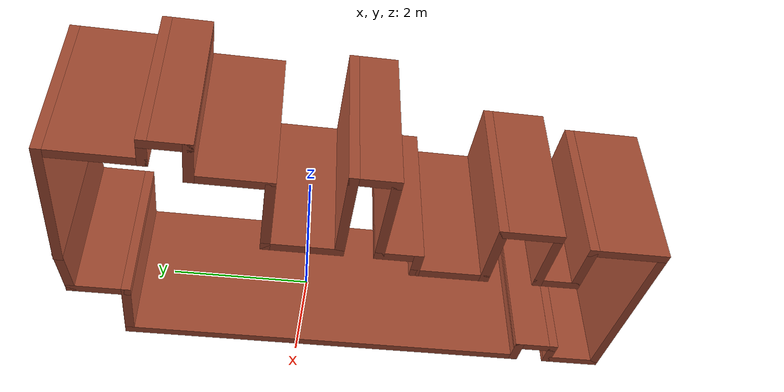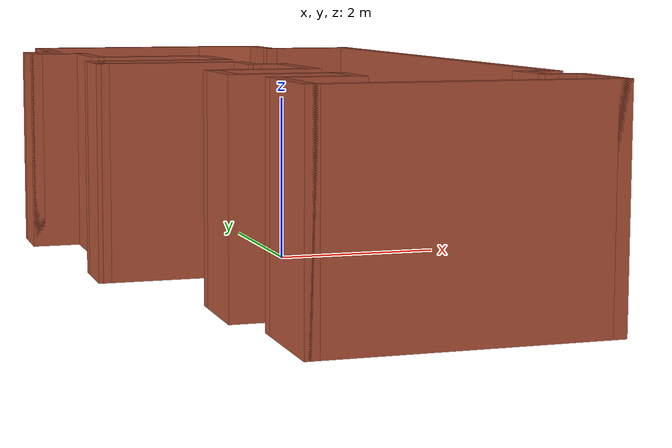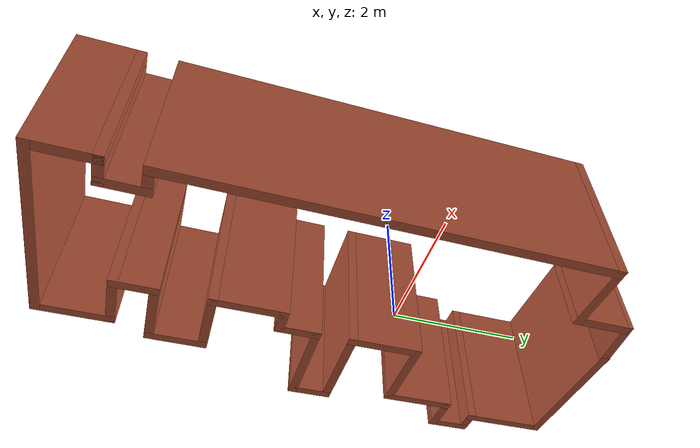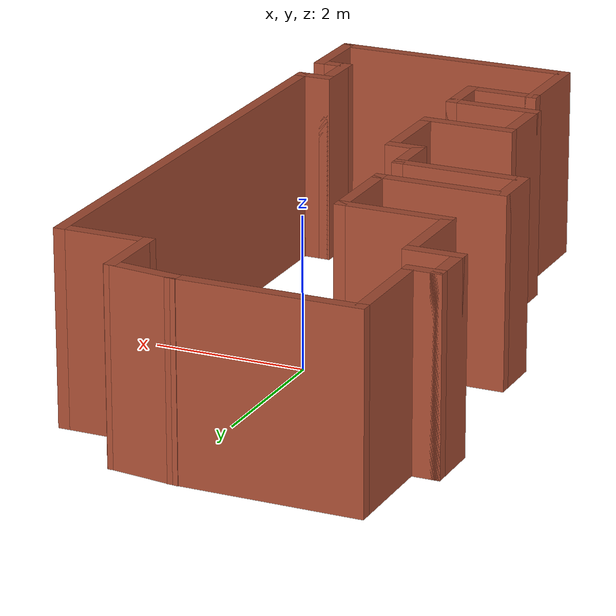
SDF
<?xml version='1.0'?>
<sdf version='1.6'>
  <model name='map_68'>
    <pose frame=''>-0.504262 -0.757579 0 0 -0 0</pose>
    <link name='Wall_10'>
      <collision name='Wall_10_Collision'>
        <geometry>
          <box>
            <size>1.5 0.15 2.5</size>
          </box>
        </geometry>
        <pose frame=''>0 0 1.25 0 -0 0</pose>
      </collision>
      <visual name='Wall_10_Visual'>
        <pose frame=''>0 0 1.25 0 -0 0</pose>
        <geometry>
          <box>
            <size>1.5 0.15 2.5</size>
          </box>
        </geometry>
        <material>
          <script>
            <uri>file://media/materials/scripts/gazebo.material</uri>
            <name>Gazebo/Bricks</name>
          </script>
          <ambient>1 1 1 1</ambient>
        </material>
        <meta>
          <layer>0</layer>
        </meta>
      </visual>
      <pose frame=''>-1 1.44569 0 0 -0 0</pose>
    </link>
    <link name='Wall_11'>
      <collision name='Wall_11_Collision'>
        <geometry>
          <box>
            <size>1.25 0.15 2.5</size>
          </box>
        </geometry>
        <pose frame=''>0 0 1.25 0 -0 0</pose>
      </collision>
      <visual name='Wall_11_Visual'>
        <pose frame=''>0 0 1.25 0 -0 0</pose>
        <geometry>
          <box>
            <size>1.25 0.15 2.5</size>
          </box>
        </geometry>
        <material>
          <script>
            <uri>file://media/materials/scripts/gazebo.material</uri>
            <name>Gazebo/Bricks</name>
          </script>
          <ambient>1 1 1 1</ambient>
        </material>
        <meta>
          <layer>0</layer>
        </meta>
      </visual>
      <pose frame=''>-0.325 0.895693 0 0 -0 -1.5708</pose>
    </link>
    <link name='Wall_12'>
      <collision name='Wall_12_Collision'>
        <geometry>
          <box>
            <size>1.75 0.15 2.5</size>
          </box>
        </geometry>
        <pose frame=''>0 0 1.25 0 -0 0</pose>
      </collision>
      <visual name='Wall_12_Visual'>
        <pose frame=''>0 0 1.25 0 -0 0</pose>
        <geometry>
          <box>
            <size>1.75 0.15 2.5</size>
          </box>
        </geometry>
        <material>
          <script>
            <uri>file://media/materials/scripts/gazebo.material</uri>
            <name>Gazebo/Bricks</name>
          </script>
          <ambient>1 1 1 1</ambient>
        </material>
        <meta>
          <layer>0</layer>
        </meta>
      </visual>
      <pose frame=''>-1.125 0.345693 0 0 -0 3.14159</pose>
    </link>
    <link name='Wall_13'>
      <collision name='Wall_13_Collision'>
        <geometry>
          <box>
            <size>0.75 0.15 2.5</size>
          </box>
        </geometry>
        <pose frame=''>0 0 1.25 0 -0 0</pose>
      </collision>
      <visual name='Wall_13_Visual'>
        <pose frame=''>0 0 1.25 0 -0 0</pose>
        <geometry>
          <box>
            <size>0.75 0.15 2.5</size>
          </box>
        </geometry>
        <material>
          <script>
            <uri>file://media/materials/scripts/gazebo.material</uri>
            <name>Gazebo/Bricks</name>
          </script>
          <ambient>1 1 1 1</ambient>
        </material>
        <meta>
          <layer>0</layer>
        </meta>
      </visual>
      <pose frame=''>-1.925 0.045693 0 0 -0 -1.5708</pose>
    </link>
    <link name='Wall_14'>
      <collision name='Wall_14_Collision'>
        <geometry>
          <box>
            <size>1.75 0.15 2.5</size>
          </box>
        </geometry>
        <pose frame=''>0 0 1.25 0 -0 0</pose>
      </collision>
      <visual name='Wall_14_Visual'>
        <pose frame=''>0 0 1.25 0 -0 0</pose>
        <geometry>
          <box>
            <size>1.75 0.15 2.5</size>
          </box>
        </geometry>
        <material>
          <script>
            <uri>file://media/materials/scripts/gazebo.material</uri>
            <name>Gazebo/Bricks</name>
          </script>
          <ambient>1 1 1 1</ambient>
        </material>
        <meta>
          <layer>0</layer>
        </meta>
      </visual>
      <pose frame=''>-1.125 -0.254307 0 0 -0 0</pose>
    </link>
    <link name='Wall_15'>
      <collision name='Wall_15_Collision'>
        <geometry>
          <box>
            <size>0.75 0.15 2.5</size>
          </box>
        </geometry>
        <pose frame=''>0 0 1.25 0 -0 0</pose>
      </collision>
      <visual name='Wall_15_Visual'>
        <pose frame=''>0 0 1.25 0 -0 0</pose>
        <geometry>
          <box>
            <size>0.75 0.15 2.5</size>
          </box>
        </geometry>
        <material>
          <script>
            <uri>file://media/materials/scripts/gazebo.material</uri>
            <name>Gazebo/Bricks</name>
          </script>
          <ambient>1 1 1 1</ambient>
        </material>
        <meta>
          <layer>0</layer>
        </meta>
      </visual>
      <pose frame=''>-0.325 -0.554307 0 0 -0 -1.5708</pose>
    </link>
    <link name='Wall_16'>
      <collision name='Wall_16_Collision'>
        <geometry>
          <box>
            <size>0.5 0.15 2.5</size>
          </box>
        </geometry>
        <pose frame=''>0 0 1.25 0 -0 0</pose>
      </collision>
      <visual name='Wall_16_Visual'>
        <pose frame=''>0 0 1.25 0 -0 0</pose>
        <geometry>
          <box>
            <size>0.5 0.15 2.5</size>
          </box>
        </geometry>
        <material>
          <script>
            <uri>file://media/materials/scripts/gazebo.material</uri>
            <name>Gazebo/Bricks</name>
          </script>
          <ambient>1 1 1 1</ambient>
        </material>
        <meta>
          <layer>0</layer>
        </meta>
      </visual>
      <pose frame=''>-0.15 -0.854307 0 0 -0 0</pose>
    </link>
    <link name='Wall_17'>
      <collision name='Wall_17_Collision'>
        <geometry>
          <box>
            <size>1.25 0.15 2.5</size>
          </box>
        </geometry>
        <pose frame=''>0 0 1.25 0 -0 0</pose>
      </collision>
      <visual name='Wall_17_Visual'>
        <pose frame=''>0 0 1.25 0 -0 0</pose>
        <geometry>
          <box>
            <size>1.25 0.15 2.5</size>
          </box>
        </geometry>
        <material>
          <script>
            <uri>file://media/materials/scripts/gazebo.material</uri>
            <name>Gazebo/Bricks</name>
          </script>
          <ambient>1 1 1 1</ambient>
        </material>
        <meta>
          <layer>0</layer>
        </meta>
      </visual>
      <pose frame=''>0.025 -1.40431 0 0 -0 -1.5708</pose>
    </link>
    <link name='Wall_18'>
      <collision name='Wall_18_Collision'>
        <geometry>
          <box>
            <size>1.25 0.15 2.5</size>
          </box>
        </geometry>
        <pose frame=''>0 0 1.25 0 -0 0</pose>
      </collision>
      <visual name='Wall_18_Visual'>
        <pose frame=''>0 0 1.25 0 -0 0</pose>
        <geometry>
          <box>
            <size>1.25 0.15 2.5</size>
          </box>
        </geometry>
        <material>
          <script>
            <uri>file://media/materials/scripts/gazebo.material</uri>
            <name>Gazebo/Bricks</name>
          </script>
          <ambient>1 1 1 1</ambient>
        </material>
        <meta>
          <layer>0</layer>
        </meta>
      </visual>
      <pose frame=''>-0.525 -1.95431 0 0 -0 3.14159</pose>
    </link>
    <link name='Wall_19'>
      <collision name='Wall_19_Collision'>
        <geometry>
          <box>
            <size>1 0.15 2.5</size>
          </box>
        </geometry>
        <pose frame=''>0 0 1.25 0 -0 0</pose>
      </collision>
      <visual name='Wall_19_Visual'>
        <pose frame=''>0 0 1.25 0 -0 0</pose>
        <geometry>
          <box>
            <size>1 0.15 2.5</size>
          </box>
        </geometry>
        <material>
          <script>
            <uri>file://media/materials/scripts/gazebo.material</uri>
            <name>Gazebo/Bricks</name>
          </script>
          <ambient>1 1 1 1</ambient>
        </material>
        <meta>
          <layer>0</layer>
        </meta>
      </visual>
      <pose frame=''>-1.075 -2.37931 0 0 -0 -1.5708</pose>
    </link>
    <link name='Wall_2'>
      <collision name='Wall_2_Collision'>
        <geometry>
          <box>
            <size>2.43882 0.15 2.5</size>
          </box>
        </geometry>
        <pose frame=''>0 0 1.25 0 -0 0</pose>
      </collision>
      <visual name='Wall_2_Visual'>
        <pose frame=''>0 0 1.25 0 -0 0</pose>
        <geometry>
          <box>
            <size>2.43882 0.15 2.5</size>
          </box>
        </geometry>
        <material>
          <script>
            <uri>file://media/materials/scripts/gazebo.material</uri>
            <name>Gazebo/Bricks</name>
          </script>
          <ambient>1 1 1 1</ambient>
        </material>
        <meta>
          <layer>0</layer>
        </meta>
      </visual>
      <pose frame=''>-0.78059 4.49569 0 0 -0 3.14159</pose>
    </link>
    <link name='Wall_20'>
      <collision name='Wall_20_Collision'>
        <geometry>
          <box>
            <size>1.25 0.15 2.5</size>
          </box>
        </geometry>
        <pose frame=''>0 0 1.25 0 -0 0</pose>
      </collision>
      <visual name='Wall_20_Visual'>
        <pose frame=''>0 0 1.25 0 -0 0</pose>
        <geometry>
          <box>
            <size>1.25 0.15 2.5</size>
          </box>
        </geometry>
        <material>
          <script>
            <uri>file://media/materials/scripts/gazebo.material</uri>
            <name>Gazebo/Bricks</name>
          </script>
          <ambient>1 1 1 1</ambient>
        </material>
        <meta>
          <layer>0</layer>
        </meta>
      </visual>
      <pose frame=''>-0.525 -2.80431 0 0 -0 0</pose>
    </link>
    <link name='Wall_21'>
      <collision name='Wall_21_Collision'>
        <geometry>
          <box>
            <size>0.75 0.15 2.5</size>
          </box>
        </geometry>
        <pose frame=''>0 0 1.25 0 -0 0</pose>
      </collision>
      <visual name='Wall_21_Visual'>
        <pose frame=''>0 0 1.25 0 -0 0</pose>
        <geometry>
          <box>
            <size>0.75 0.15 2.5</size>
          </box>
        </geometry>
        <material>
          <script>
            <uri>file://media/materials/scripts/gazebo.material</uri>
            <name>Gazebo/Bricks</name>
          </script>
          <ambient>1 1 1 1</ambient>
        </material>
        <meta>
          <layer>0</layer>
        </meta>
      </visual>
      <pose frame=''>0.025 -3.10431 0 0 -0 -1.5708</pose>
    </link>
    <link name='Wall_22'>
      <collision name='Wall_22_Collision'>
        <geometry>
          <box>
            <size>1 0.15 2.5</size>
          </box>
        </geometry>
        <pose frame=''>0 0 1.25 0 -0 0</pose>
      </collision>
      <visual name='Wall_22_Visual'>
        <pose frame=''>0 0 1.25 0 -0 0</pose>
        <geometry>
          <box>
            <size>1 0.15 2.5</size>
          </box>
        </geometry>
        <material>
          <script>
            <uri>file://media/materials/scripts/gazebo.material</uri>
            <name>Gazebo/Bricks</name>
          </script>
          <ambient>1 1 1 1</ambient>
        </material>
        <meta>
          <layer>0</layer>
        </meta>
      </visual>
      <pose frame=''>-0.4 -3.40431 0 0 -0 3.14159</pose>
    </link>
    <link name='Wall_23'>
      <collision name='Wall_23_Collision'>
        <geometry>
          <box>
            <size>1.25 0.15 2.5</size>
          </box>
        </geometry>
        <pose frame=''>0 0 1.25 0 -0 0</pose>
      </collision>
      <visual name='Wall_23_Visual'>
        <pose frame=''>0 0 1.25 0 -0 0</pose>
        <geometry>
          <box>
            <size>1.25 0.15 2.5</size>
          </box>
        </geometry>
        <material>
          <script>
            <uri>file://media/materials/scripts/gazebo.material</uri>
            <name>Gazebo/Bricks</name>
          </script>
          <ambient>1 1 1 1</ambient>
        </material>
        <meta>
          <layer>0</layer>
        </meta>
      </visual>
      <pose frame=''>-0.825 -3.95431 0 0 -0 -1.5708</pose>
    </link>
    <link name='Wall_3'>
      <collision name='Wall_3_Collision'>
        <geometry>
          <box>
            <size>1.5 0.15 2.5</size>
          </box>
        </geometry>
        <pose frame=''>0 0 1.25 0 -0 0</pose>
      </collision>
      <visual name='Wall_3_Visual'>
        <pose frame=''>0 0 1.25 0 -0 0</pose>
        <geometry>
          <box>
            <size>1.5 0.15 2.5</size>
          </box>
        </geometry>
        <material>
          <script>
            <uri>file://media/materials/scripts/gazebo.material</uri>
            <name>Gazebo/Bricks</name>
          </script>
          <ambient>1 1 1 1</ambient>
        </material>
        <meta>
          <layer>0</layer>
        </meta>
      </visual>
      <pose frame=''>-1.925 3.82069 0 0 -0 -1.5708</pose>
    </link>
    <link name='Wall_4'>
      <collision name='Wall_4_Collision'>
        <geometry>
          <box>
            <size>0.5 0.15 2.5</size>
          </box>
        </geometry>
        <pose frame=''>0 0 1.25 0 -0 0</pose>
      </collision>
      <visual name='Wall_4_Visual'>
        <pose frame=''>0 0 1.25 0 -0 0</pose>
        <geometry>
          <box>
            <size>0.5 0.15 2.5</size>
          </box>
        </geometry>
        <material>
          <script>
            <uri>file://media/materials/scripts/gazebo.material</uri>
            <name>Gazebo/Bricks</name>
          </script>
          <ambient>1 1 1 1</ambient>
        </material>
        <meta>
          <layer>0</layer>
        </meta>
      </visual>
      <pose frame=''>-2.1 3.14569 0 0 -0 3.14159</pose>
    </link>
    <link name='Wall_48'>
      <collision name='Wall_48_Collision'>
        <geometry>
          <box>
            <size>3.25 0.15 2.5</size>
          </box>
        </geometry>
        <pose frame=''>0 0 1.25 0 -0 0</pose>
      </collision>
      <visual name='Wall_48_Visual'>
        <pose frame=''>0 0 1.25 0 -0 0</pose>
        <geometry>
          <box>
            <size>3.25 0.15 2.5</size>
          </box>
        </geometry>
        <material>
          <script>
            <uri>file://media/materials/scripts/gazebo.material</uri>
            <name>Gazebo/Bricks</name>
          </script>
          <ambient>1 1 1 1</ambient>
        </material>
        <meta>
          <layer>0</layer>
        </meta>
      </visual>
      <pose frame=''>0.725 -4.50431 0 0 -0 0</pose>
    </link>
    <link name='Wall_49'>
      <collision name='Wall_49_Collision'>
        <geometry>
          <box>
            <size>1 0.15 2.5</size>
          </box>
        </geometry>
        <pose frame=''>0 0 1.25 0 -0 0</pose>
      </collision>
      <visual name='Wall_49_Visual'>
        <pose frame=''>0 0 1.25 0 -0 0</pose>
        <geometry>
          <box>
            <size>1 0.15 2.5</size>
          </box>
        </geometry>
        <material>
          <script>
            <uri>file://media/materials/scripts/gazebo.material</uri>
            <name>Gazebo/Bricks</name>
          </script>
          <ambient>1 1 1 1</ambient>
        </material>
        <meta>
          <layer>0</layer>
        </meta>
      </visual>
      <pose frame=''>2.275 -4.07931 0 0 -0 1.5708</pose>
    </link>
    <link name='Wall_5'>
      <collision name='Wall_5_Collision'>
        <geometry>
          <box>
            <size>0.75 0.15 2.5</size>
          </box>
        </geometry>
        <pose frame=''>0 0 1.25 0 -0 0</pose>
      </collision>
      <visual name='Wall_5_Visual'>
        <pose frame=''>0 0 1.25 0 -0 0</pose>
        <geometry>
          <box>
            <size>0.75 0.15 2.5</size>
          </box>
        </geometry>
        <material>
          <script>
            <uri>file://media/materials/scripts/gazebo.material</uri>
            <name>Gazebo/Bricks</name>
          </script>
          <ambient>1 1 1 1</ambient>
        </material>
        <meta>
          <layer>0</layer>
        </meta>
      </visual>
      <pose frame=''>-2.275 2.84569 0 0 -0 -1.5708</pose>
    </link>
    <link name='Wall_50'>
      <collision name='Wall_50_Collision'>
        <geometry>
          <box>
            <size>0.5 0.15 2.5</size>
          </box>
        </geometry>
        <pose frame=''>0 0 1.25 0 -0 0</pose>
      </collision>
      <visual name='Wall_50_Visual'>
        <pose frame=''>0 0 1.25 0 -0 0</pose>
        <geometry>
          <box>
            <size>0.5 0.15 2.5</size>
          </box>
        </geometry>
        <material>
          <script>
            <uri>file://media/materials/scripts/gazebo.material</uri>
            <name>Gazebo/Bricks</name>
          </script>
          <ambient>1 1 1 1</ambient>
        </material>
        <meta>
          <layer>0</layer>
        </meta>
      </visual>
      <pose frame=''>2.1 -3.65431 0 0 -0 3.14159</pose>
    </link>
    <link name='Wall_51'>
      <collision name='Wall_51_Collision'>
        <geometry>
          <box>
            <size>0.75 0.15 2.5</size>
          </box>
        </geometry>
        <pose frame=''>0 0 1.25 0 -0 0</pose>
      </collision>
      <visual name='Wall_51_Visual'>
        <pose frame=''>0 0 1.25 0 -0 0</pose>
        <geometry>
          <box>
            <size>0.75 0.15 2.5</size>
          </box>
        </geometry>
        <material>
          <script>
            <uri>file://media/materials/scripts/gazebo.material</uri>
            <name>Gazebo/Bricks</name>
          </script>
          <ambient>1 1 1 1</ambient>
        </material>
        <meta>
          <layer>0</layer>
        </meta>
      </visual>
      <pose frame=''>1.925 -3.35431 0 0 -0 1.5708</pose>
    </link>
    <link name='Wall_52'>
      <collision name='Wall_52_Collision'>
        <geometry>
          <box>
            <size>0.5 0.15 2.5</size>
          </box>
        </geometry>
        <pose frame=''>0 0 1.25 0 -0 0</pose>
      </collision>
      <visual name='Wall_52_Visual'>
        <pose frame=''>0 0 1.25 0 -0 0</pose>
        <geometry>
          <box>
            <size>0.5 0.15 2.5</size>
          </box>
        </geometry>
        <material>
          <script>
            <uri>file://media/materials/scripts/gazebo.material</uri>
            <name>Gazebo/Bricks</name>
          </script>
          <ambient>1 1 1 1</ambient>
        </material>
        <meta>
          <layer>0</layer>
        </meta>
      </visual>
      <pose frame=''>2.1 -3.05431 0 0 -0 0</pose>
    </link>
    <link name='Wall_53'>
      <collision name='Wall_53_Collision'>
        <geometry>
          <box>
            <size>6.75 0.15 2.5</size>
          </box>
        </geometry>
        <pose frame=''>0 0 1.25 0 -0 0</pose>
      </collision>
      <visual name='Wall_53_Visual'>
        <pose frame=''>0 0 1.25 0 -0 0</pose>
        <geometry>
          <box>
            <size>6.75 0.15 2.5</size>
          </box>
        </geometry>
        <material>
          <script>
            <uri>file://media/materials/scripts/gazebo.material</uri>
            <name>Gazebo/Bricks</name>
          </script>
          <ambient>1 1 1 1</ambient>
        </material>
        <meta>
          <layer>0</layer>
        </meta>
      </visual>
      <pose frame=''>2.275 0.245693 0 0 -0 1.5708</pose>
    </link>
    <link name='Wall_54'>
      <collision name='Wall_54_Collision'>
        <geometry>
          <box>
            <size>1.25 0.15 2.5</size>
          </box>
        </geometry>
        <pose frame=''>0 0 1.25 0 -0 0</pose>
      </collision>
      <visual name='Wall_54_Visual'>
        <pose frame=''>0 0 1.25 0 -0 0</pose>
        <geometry>
          <box>
            <size>1.25 0.15 2.5</size>
          </box>
        </geometry>
        <material>
          <script>
            <uri>file://media/materials/scripts/gazebo.material</uri>
            <name>Gazebo/Bricks</name>
          </script>
          <ambient>1 1 1 1</ambient>
        </material>
        <meta>
          <layer>0</layer>
        </meta>
      </visual>
      <pose frame=''>1.725 3.54569 0 0 -0 3.14159</pose>
    </link>
    <link name='Wall_57'>
      <collision name='Wall_57_Collision'>
        <geometry>
          <box>
            <size>1 0.15 2.5</size>
          </box>
        </geometry>
        <pose frame=''>0 0 1.25 0 -0 0</pose>
      </collision>
      <visual name='Wall_57_Visual'>
        <pose frame=''>0 0 1.25 0 -0 0</pose>
        <geometry>
          <box>
            <size>1 0.15 2.5</size>
          </box>
        </geometry>
        <material>
          <script>
            <uri>file://media/materials/scripts/gazebo.material</uri>
            <name>Gazebo/Bricks</name>
          </script>
          <ambient>1 1 1 1</ambient>
        </material>
        <meta>
          <layer>0</layer>
        </meta>
      </visual>
      <pose frame=''>1.175 3.97069 0 0 -0 1.5708</pose>
    </link>
    <link name='Wall_58'>
      <collision name='Wall_58_Collision'>
        <geometry>
          <box>
            <size>0.967321 0.15 2.5</size>
          </box>
        </geometry>
        <pose frame=''>0 0 1.25 0 -0 0</pose>
      </collision>
      <visual name='Wall_58_Visual'>
        <pose frame=''>0 0 1.25 0 -0 0</pose>
        <geometry>
          <box>
            <size>0.967321 0.15 2.5</size>
          </box>
        </geometry>
        <material>
          <script>
            <uri>file://media/materials/scripts/gazebo.material</uri>
            <name>Gazebo/Bricks</name>
          </script>
          <ambient>1 1 1 1</ambient>
        </material>
        <meta>
          <layer>0</layer>
        </meta>
      </visual>
      <pose frame=''>0.76941 4.44569 0 0 -0 3.01893</pose>
    </link>
    <link name='Wall_6'>
      <collision name='Wall_6_Collision'>
        <geometry>
          <box>
            <size>0.75 0.15 2.5</size>
          </box>
        </geometry>
        <pose frame=''>0 0 1.25 0 -0 0</pose>
      </collision>
      <visual name='Wall_6_Visual'>
        <pose frame=''>0 0 1.25 0 -0 0</pose>
        <geometry>
          <box>
            <size>0.75 0.15 2.5</size>
          </box>
        </geometry>
        <material>
          <script>
            <uri>file://media/materials/scripts/gazebo.material</uri>
            <name>Gazebo/Bricks</name>
          </script>
          <ambient>1 1 1 1</ambient>
        </material>
        <meta>
          <layer>0</layer>
        </meta>
      </visual>
      <pose frame=''>-1.975 2.54569 0 0 -0 0</pose>
    </link>
    <link name='Wall_9'>
      <collision name='Wall_9_Collision'>
        <geometry>
          <box>
            <size>1.25 0.15 2.5</size>
          </box>
        </geometry>
        <pose frame=''>0 0 1.25 0 -0 0</pose>
      </collision>
      <visual name='Wall_9_Visual'>
        <pose frame=''>0 0 1.25 0 -0 0</pose>
        <geometry>
          <box>
            <size>1.25 0.15 2.5</size>
          </box>
        </geometry>
        <material>
          <script>
            <uri>file://media/materials/scripts/gazebo.material</uri>
            <name>Gazebo/Bricks</name>
          </script>
          <ambient>1 1 1 1</ambient>
        </material>
        <meta>
          <layer>0</layer>
        </meta>
      </visual>
      <pose frame=''>-1.675 1.99569 0 0 -0 -1.5708</pose>
    </link>
    <static>1</static>
  </model>
</sdf>
